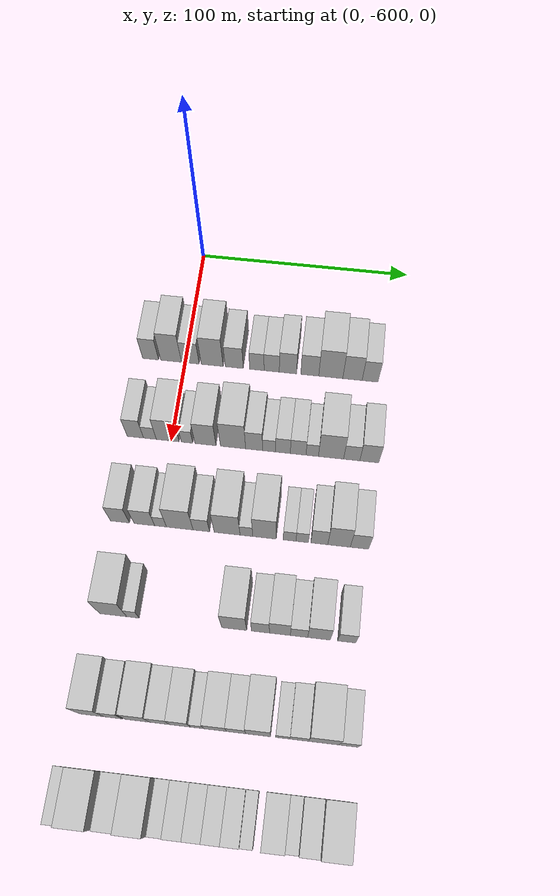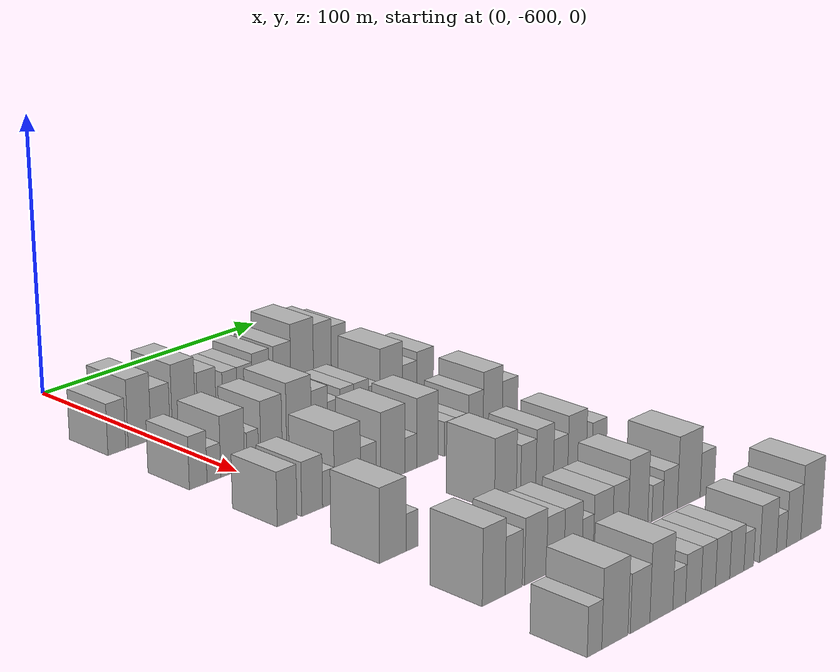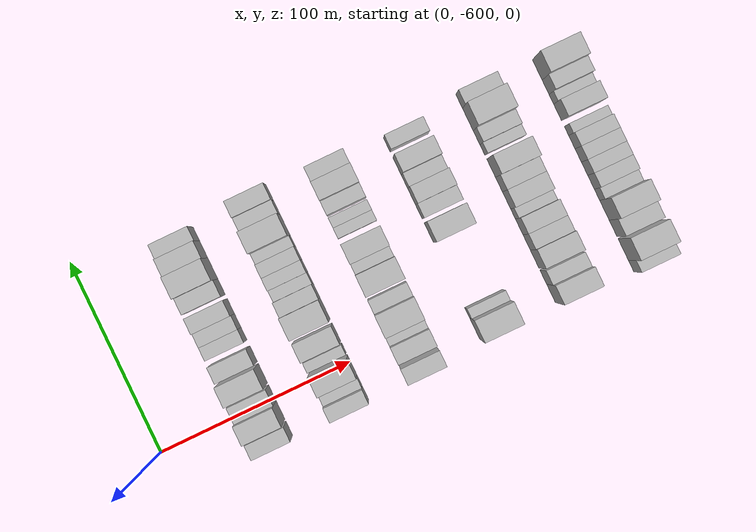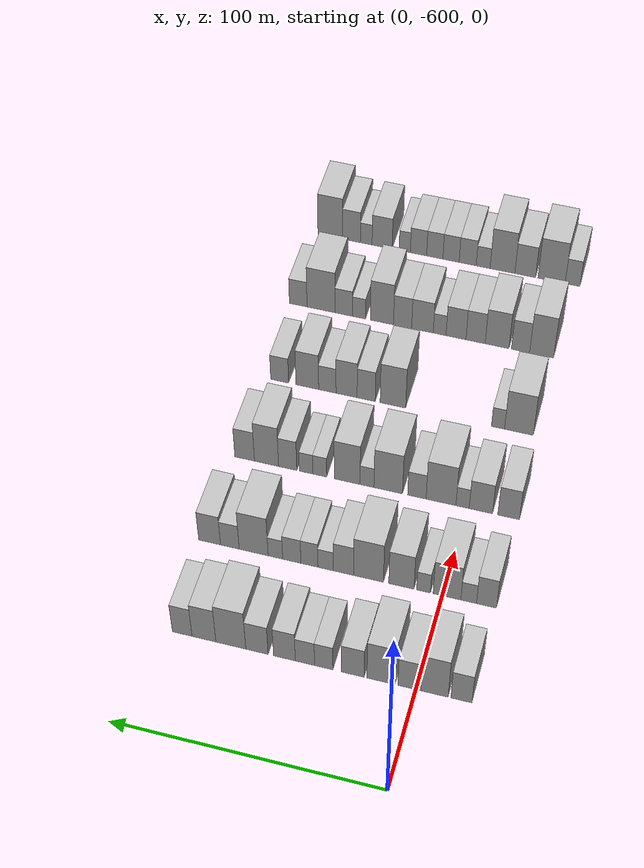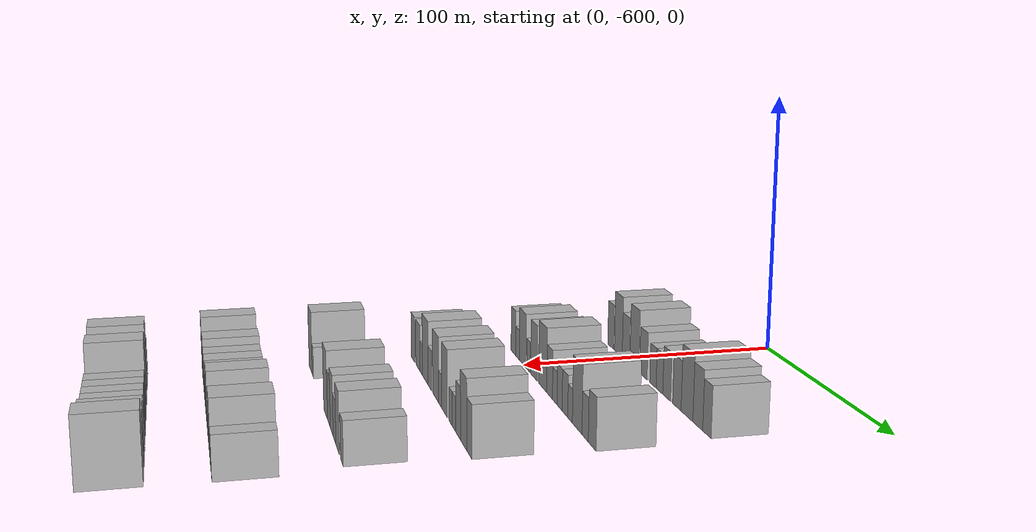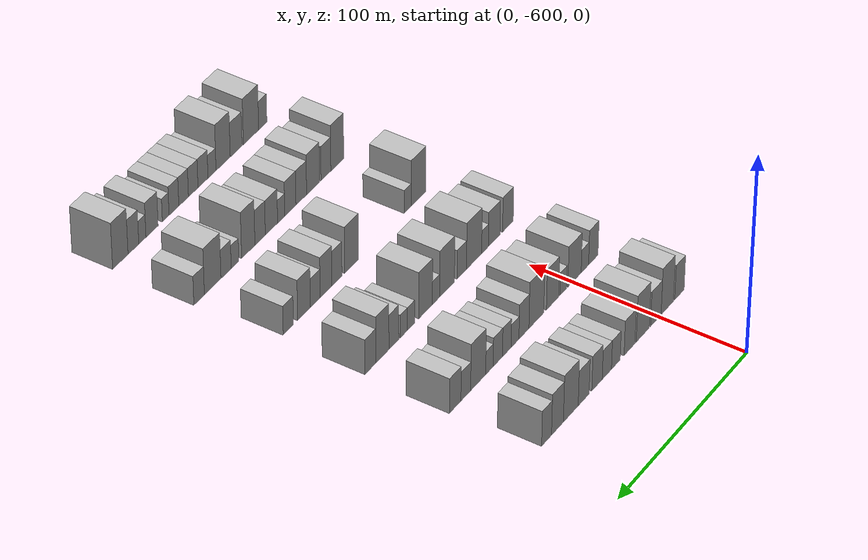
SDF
<sdf version="1.6">
 <world name="default">
  <model name="building_1">
   <static>1</static>
   <pose>50.0000 -616.2294 0 0.000000 0.000000 0.000000</pose>
   <link name="link">
    <pose>0 0 9.00 0 0 0</pose>
    <collision name="collision"><geometry><box><size>20.0000 7.5412 18.0000</size></box></geometry></collision>
    <visual name="visual">
     <cast_shadows>0</cast_shadows>
     <geometry><box><size>20.0000 7.5412 18.0000</size></box></geometry>
     <material>
      <script>
       <uri>model://HANNAS_wall/materials/scripts</uri>
       <uri>model://HANNAS_wall/materials/textures</uri>
       <name>vrc/HANNAS_wall</name>
      </script>
     </material>
    </visual>
   </link>
  </model>
  <model name="building_2">
   <static>1</static>
   <pose>50.0000 -606.5758 0 0.000000 0.000000 0.000000</pose>
   <link name="link">
    <pose>0 0 12.00 0 0 0</pose>
    <collision name="collision"><geometry><box><size>20.0000 9.7662 24.0000</size></box></geometry></collision>
    <visual name="visual">
     <cast_shadows>0</cast_shadows>
     <geometry><box><size>20.0000 9.7662 24.0000</size></box></geometry>
     <material>
      <script>
       <uri>model://HANNAS_wall/materials/scripts</uri>
       <uri>model://HANNAS_wall/materials/textures</uri>
       <name>vrc/HANNAS_wall</name>
      </script>
     </material>
    </visual>
   </link>
  </model>
  <model name="building_3">
   <static>1</static>
   <pose>50.0000 -597.5221 0 0.000000 0.000000 0.000000</pose>
   <link name="link">
    <pose>0 0 9.00 0 0 0</pose>
    <collision name="collision"><geometry><box><size>20.0000 8.3411 18.0000</size></box></geometry></collision>
    <visual name="visual">
     <cast_shadows>0</cast_shadows>
     <geometry><box><size>20.0000 8.3411 18.0000</size></box></geometry>
     <material>
      <script>
       <uri>model://HANNAS_wall/materials/scripts</uri>
       <uri>model://HANNAS_wall/materials/textures</uri>
       <name>vrc/HANNAS_wall</name>
      </script>
     </material>
    </visual>
   </link>
  </model>
  <model name="building_4">
   <static>1</static>
   <pose>50.0000 -587.2268 0 0.000000 0.000000 0.000000</pose>
   <link name="link">
    <pose>0 0 12.00 0 0 0</pose>
    <collision name="collision"><geometry><box><size>20.0000 10.2496 24.0000</size></box></geometry></collision>
    <visual name="visual">
     <cast_shadows>0</cast_shadows>
     <geometry><box><size>20.0000 10.2496 24.0000</size></box></geometry>
     <material>
      <script>
       <uri>model://HANNAS_wall/materials/scripts</uri>
       <uri>model://HANNAS_wall/materials/textures</uri>
       <name>vrc/HANNAS_wall</name>
      </script>
     </material>
    </visual>
   </link>
  </model>
  <model name="building_5">
   <static>1</static>
   <pose>50.0000 -576.8918 0 0.000000 0.000000 0.000000</pose>
   <link name="link">
    <pose>0 0 9.00 0 0 0</pose>
    <collision name="collision"><geometry><box><size>20.0000 8.4203 18.0000</size></box></geometry></collision>
    <visual name="visual">
     <cast_shadows>0</cast_shadows>
     <geometry><box><size>20.0000 8.4203 18.0000</size></box></geometry>
     <material>
      <script>
       <uri>model://HANNAS_wall/materials/scripts</uri>
       <uri>model://HANNAS_wall/materials/textures</uri>
       <name>vrc/HANNAS_wall</name>
      </script>
     </material>
    </visual>
   </link>
  </model>
  <model name="building_6">
   <static>1</static>
   <pose>50.0000 -566.3089 0 0.000000 0.000000 0.000000</pose>
   <link name="link">
    <pose>0 0 7.50 0 0 0</pose>
    <collision name="collision"><geometry><box><size>20.0000 6.7456 15.0000</size></box></geometry></collision>
    <visual name="visual">
     <cast_shadows>0</cast_shadows>
     <geometry><box><size>20.0000 6.7456 15.0000</size></box></geometry>
     <material>
      <script>
       <uri>model://HANNAS_wall/materials/scripts</uri>
       <uri>model://HANNAS_wall/materials/textures</uri>
       <name>vrc/HANNAS_wall</name>
      </script>
     </material>
    </visual>
   </link>
  </model>
  <model name="building_7">
   <static>1</static>
   <pose>50.0000 -559.3976 0 0.000000 0.000000 0.000000</pose>
   <link name="link">
    <pose>0 0 7.50 0 0 0</pose>
    <collision name="collision"><geometry><box><size>20.0000 7.0770 15.0000</size></box></geometry></collision>
    <visual name="visual">
     <cast_shadows>0</cast_shadows>
     <geometry><box><size>20.0000 7.0770 15.0000</size></box></geometry>
     <material>
      <script>
       <uri>model://HANNAS_wall/materials/scripts</uri>
       <uri>model://HANNAS_wall/materials/textures</uri>
       <name>vrc/HANNAS_wall</name>
      </script>
     </material>
    </visual>
   </link>
  </model>
  <model name="building_8">
   <static>1</static>
   <pose>50.0000 -551.8449 0 0.000000 0.000000 0.000000</pose>
   <link name="link">
    <pose>0 0 9.00 0 0 0</pose>
    <collision name="collision"><geometry><box><size>20.0000 8.0285 18.0000</size></box></geometry></collision>
    <visual name="visual">
     <cast_shadows>0</cast_shadows>
     <geometry><box><size>20.0000 8.0285 18.0000</size></box></geometry>
     <material>
      <script>
       <uri>model://HANNAS_wall/materials/scripts</uri>
       <uri>model://HANNAS_wall/materials/textures</uri>
       <name>vrc/HANNAS_wall</name>
      </script>
     </material>
    </visual>
   </link>
  </model>
  <model name="building_9">
   <static>1</static>
   <pose>50.0000 -541.6741 0 0.000000 0.000000 0.000000</pose>
   <link name="link">
    <pose>0 0 9.00 0 0 0</pose>
    <collision name="collision"><geometry><box><size>20.0000 8.3131 18.0000</size></box></geometry></collision>
    <visual name="visual">
     <cast_shadows>0</cast_shadows>
     <geometry><box><size>20.0000 8.3131 18.0000</size></box></geometry>
     <material>
      <script>
       <uri>model://HANNAS_wall/materials/scripts</uri>
       <uri>model://HANNAS_wall/materials/textures</uri>
       <name>vrc/HANNAS_wall</name>
      </script>
     </material>
    </visual>
   </link>
  </model>
  <model name="building_10">
   <static>1</static>
   <pose>50.0000 -531.9448 0 0.000000 0.000000 0.000000</pose>
   <link name="link">
    <pose>0 0 12.00 0 0 0</pose>
    <collision name="collision"><geometry><box><size>20.0000 11.1454 24.0000</size></box></geometry></collision>
    <visual name="visual">
     <cast_shadows>0</cast_shadows>
     <geometry><box><size>20.0000 11.1454 24.0000</size></box></geometry>
     <material>
      <script>
       <uri>model://HANNAS_wall/materials/scripts</uri>
       <uri>model://HANNAS_wall/materials/textures</uri>
       <name>vrc/HANNAS_wall</name>
      </script>
     </material>
    </visual>
   </link>
  </model>
  <model name="building_11">
   <static>1</static>
   <pose>50.0000 -521.9122 0 0.000000 0.000000 0.000000</pose>
   <link name="link">
    <pose>0 0 10.50 0 0 0</pose>
    <collision name="collision"><geometry><box><size>20.0000 8.9199 21.0000</size></box></geometry></collision>
    <visual name="visual">
     <cast_shadows>0</cast_shadows>
     <geometry><box><size>20.0000 8.9199 21.0000</size></box></geometry>
     <material>
      <script>
       <uri>model://HANNAS_wall/materials/scripts</uri>
       <uri>model://HANNAS_wall/materials/textures</uri>
       <name>vrc/HANNAS_wall</name>
      </script>
     </material>
    </visual>
   </link>
  </model>
  <model name="building_12">
   <static>1</static>
   <pose>50.0000 -513.7622 0 0.000000 0.000000 0.000000</pose>
   <link name="link">
    <pose>0 0 9.00 0 0 0</pose>
    <collision name="collision"><geometry><box><size>20.0000 7.3800 18.0000</size></box></geometry></collision>
    <visual name="visual">
     <cast_shadows>0</cast_shadows>
     <geometry><box><size>20.0000 7.3800 18.0000</size></box></geometry>
     <material>
      <script>
       <uri>model://HANNAS_wall/materials/scripts</uri>
       <uri>model://HANNAS_wall/materials/textures</uri>
       <name>vrc/HANNAS_wall</name>
      </script>
     </material>
    </visual>
   </link>
  </model>
  <model name="building_132">
   <static>1</static>
   <pose>90.0000 -616.2915 0 0.000000 0.000000 0.000000</pose>
   <link name="link">
    <pose>0 0 9.00 0 0 0</pose>
    <collision name="collision"><geometry><box><size>20.0000 7.4170 18.0000</size></box></geometry></collision>
    <visual name="visual">
     <cast_shadows>0</cast_shadows>
     <geometry><box><size>20.0000 7.4170 18.0000</size></box></geometry>
     <material>
      <script>
       <uri>model://HANNAS_wall/materials/scripts</uri>
       <uri>model://HANNAS_wall/materials/textures</uri>
       <name>vrc/HANNAS_wall</name>
      </script>
     </material>
    </visual>
   </link>
  </model>
  <model name="building_133">
   <static>1</static>
   <pose>90.0000 -609.6742 0 0.000000 0.000000 0.000000</pose>
   <link name="link">
    <pose>0 0 6.00 0 0 0</pose>
    <collision name="collision"><geometry><box><size>20.0000 5.8177 12.0000</size></box></geometry></collision>
    <visual name="visual">
     <cast_shadows>0</cast_shadows>
     <geometry><box><size>20.0000 5.8177 12.0000</size></box></geometry>
     <material>
      <script>
       <uri>model://HANNAS_wall/materials/scripts</uri>
       <uri>model://HANNAS_wall/materials/textures</uri>
       <name>vrc/HANNAS_wall</name>
      </script>
     </material>
    </visual>
   </link>
  </model>
  <model name="building_134">
   <static>1</static>
   <pose>90.0000 -601.6048 0 0.000000 0.000000 0.000000</pose>
   <link name="link">
    <pose>0 0 10.50 0 0 0</pose>
    <collision name="collision"><geometry><box><size>20.0000 10.3211 21.0000</size></box></geometry></collision>
    <visual name="visual">
     <cast_shadows>0</cast_shadows>
     <geometry><box><size>20.0000 10.3211 21.0000</size></box></geometry>
     <material>
      <script>
       <uri>model://HANNAS_wall/materials/scripts</uri>
       <uri>model://HANNAS_wall/materials/textures</uri>
       <name>vrc/HANNAS_wall</name>
      </script>
     </material>
    </visual>
   </link>
  </model>
  <model name="building_135">
   <static>1</static>
   <pose>90.0000 -592.8657 0 0.000000 0.000000 0.000000</pose>
   <link name="link">
    <pose>0 0 6.00 0 0 0</pose>
    <collision name="collision"><geometry><box><size>20.0000 5.1571 12.0000</size></box></geometry></collision>
    <visual name="visual">
     <cast_shadows>0</cast_shadows>
     <geometry><box><size>20.0000 5.1571 12.0000</size></box></geometry>
     <material>
      <script>
       <uri>model://HANNAS_wall/materials/scripts</uri>
       <uri>model://HANNAS_wall/materials/textures</uri>
       <name>vrc/HANNAS_wall</name>
      </script>
     </material>
    </visual>
   </link>
  </model>
  <model name="building_136">
   <static>1</static>
   <pose>90.0000 -584.5402 0 0.000000 0.000000 0.000000</pose>
   <link name="link">
    <pose>0 0 10.50 0 0 0</pose>
    <collision name="collision"><geometry><box><size>20.0000 9.4940 21.0000</size></box></geometry></collision>
    <visual name="visual">
     <cast_shadows>0</cast_shadows>
     <geometry><box><size>20.0000 9.4940 21.0000</size></box></geometry>
     <material>
      <script>
       <uri>model://HANNAS_wall/materials/scripts</uri>
       <uri>model://HANNAS_wall/materials/textures</uri>
       <name>vrc/HANNAS_wall</name>
      </script>
     </material>
    </visual>
   </link>
  </model>
  <model name="building_137">
   <static>1</static>
   <pose>90.0000 -572.1343 0 0.000000 0.000000 0.000000</pose>
   <link name="link">
    <pose>0 0 12.00 0 0 0</pose>
    <collision name="collision"><geometry><box><size>20.0000 11.3178 24.0000</size></box></geometry></collision>
    <visual name="visual">
     <cast_shadows>0</cast_shadows>
     <geometry><box><size>20.0000 11.3178 24.0000</size></box></geometry>
     <material>
      <script>
       <uri>model://HANNAS_wall/materials/scripts</uri>
       <uri>model://HANNAS_wall/materials/textures</uri>
       <name>vrc/HANNAS_wall</name>
      </script>
     </material>
    </visual>
   </link>
  </model>
  <model name="building_138">
   <static>1</static>
   <pose>90.0000 -562.6728 0 0.000000 0.000000 0.000000</pose>
   <link name="link">
    <pose>0 0 9.00 0 0 0</pose>
    <collision name="collision"><geometry><box><size>20.0000 7.6053 18.0000</size></box></geometry></collision>
    <visual name="visual">
     <cast_shadows>0</cast_shadows>
     <geometry><box><size>20.0000 7.6053 18.0000</size></box></geometry>
     <material>
      <script>
       <uri>model://HANNAS_wall/materials/scripts</uri>
       <uri>model://HANNAS_wall/materials/textures</uri>
       <name>vrc/HANNAS_wall</name>
      </script>
     </material>
    </visual>
   </link>
  </model>
  <model name="building_139">
   <static>1</static>
   <pose>90.0000 -555.9169 0 0.000000 0.000000 0.000000</pose>
   <link name="link">
    <pose>0 0 6.00 0 0 0</pose>
    <collision name="collision"><geometry><box><size>20.0000 5.9066 12.0000</size></box></geometry></collision>
    <visual name="visual">
     <cast_shadows>0</cast_shadows>
     <geometry><box><size>20.0000 5.9066 12.0000</size></box></geometry>
     <material>
      <script>
       <uri>model://HANNAS_wall/materials/scripts</uri>
       <uri>model://HANNAS_wall/materials/textures</uri>
       <name>vrc/HANNAS_wall</name>
      </script>
     </material>
    </visual>
   </link>
  </model>
  <model name="building_140">
   <static>1</static>
   <pose>90.0000 -549.7040 0 0.000000 0.000000 0.000000</pose>
   <link name="link">
    <pose>0 0 7.50 0 0 0</pose>
    <collision name="collision"><geometry><box><size>20.0000 6.5191 15.0000</size></box></geometry></collision>
    <visual name="visual">
     <cast_shadows>0</cast_shadows>
     <geometry><box><size>20.0000 6.5191 15.0000</size></box></geometry>
     <material>
      <script>
       <uri>model://HANNAS_wall/materials/scripts</uri>
       <uri>model://HANNAS_wall/materials/textures</uri>
       <name>vrc/HANNAS_wall</name>
      </script>
     </material>
    </visual>
   </link>
  </model>
  <model name="building_141">
   <static>1</static>
   <pose>90.0000 -542.9523 0 0.000000 0.000000 0.000000</pose>
   <link name="link">
    <pose>0 0 7.50 0 0 0</pose>
    <collision name="collision"><geometry><box><size>20.0000 6.9843 15.0000</size></box></geometry></collision>
    <visual name="visual">
     <cast_shadows>0</cast_shadows>
     <geometry><box><size>20.0000 6.9843 15.0000</size></box></geometry>
     <material>
      <script>
       <uri>model://HANNAS_wall/materials/scripts</uri>
       <uri>model://HANNAS_wall/materials/textures</uri>
       <name>vrc/HANNAS_wall</name>
      </script>
     </material>
    </visual>
   </link>
  </model>
  <model name="building_142">
   <static>1</static>
   <pose>90.0000 -536.6848 0 0.000000 0.000000 0.000000</pose>
   <link name="link">
    <pose>0 0 6.00 0 0 0</pose>
    <collision name="collision"><geometry><box><size>20.0000 5.5508 12.0000</size></box></geometry></collision>
    <visual name="visual">
     <cast_shadows>0</cast_shadows>
     <geometry><box><size>20.0000 5.5508 12.0000</size></box></geometry>
     <material>
      <script>
       <uri>model://HANNAS_wall/materials/scripts</uri>
       <uri>model://HANNAS_wall/materials/textures</uri>
       <name>vrc/HANNAS_wall</name>
      </script>
     </material>
    </visual>
   </link>
  </model>
  <model name="building_143">
   <static>1</static>
   <pose>90.0000 -528.3121 0 0.000000 0.000000 0.000000</pose>
   <link name="link">
    <pose>0 0 12.00 0 0 0</pose>
    <collision name="collision"><geometry><box><size>20.0000 11.1945 24.0000</size></box></geometry></collision>
    <visual name="visual">
     <cast_shadows>0</cast_shadows>
     <geometry><box><size>20.0000 11.1945 24.0000</size></box></geometry>
     <material>
      <script>
       <uri>model://HANNAS_wall/materials/scripts</uri>
       <uri>model://HANNAS_wall/materials/textures</uri>
       <name>vrc/HANNAS_wall</name>
      </script>
     </material>
    </visual>
   </link>
  </model>
  <model name="building_144">
   <static>1</static>
   <pose>90.0000 -519.1169 0 0.000000 0.000000 0.000000</pose>
   <link name="link">
    <pose>0 0 7.50 0 0 0</pose>
    <collision name="collision"><geometry><box><size>20.0000 7.1959 15.0000</size></box></geometry></collision>
    <visual name="visual">
     <cast_shadows>0</cast_shadows>
     <geometry><box><size>20.0000 7.1959 15.0000</size></box></geometry>
     <material>
      <script>
       <uri>model://HANNAS_wall/materials/scripts</uri>
       <uri>model://HANNAS_wall/materials/textures</uri>
       <name>vrc/HANNAS_wall</name>
      </script>
     </material>
    </visual>
   </link>
  </model>
  <model name="building_145">
   <static>1</static>
   <pose>90.0000 -511.2906 0 0.000000 0.000000 0.000000</pose>
   <link name="link">
    <pose>0 0 9.00 0 0 0</pose>
    <collision name="collision"><geometry><box><size>20.0000 8.4568 18.0000</size></box></geometry></collision>
    <visual name="visual">
     <cast_shadows>0</cast_shadows>
     <geometry><box><size>20.0000 8.4568 18.0000</size></box></geometry>
     <material>
      <script>
       <uri>model://HANNAS_wall/materials/scripts</uri>
       <uri>model://HANNAS_wall/materials/textures</uri>
       <name>vrc/HANNAS_wall</name>
      </script>
     </material>
    </visual>
   </link>
  </model>
  <model name="building_267">
   <static>1</static>
   <pose>130.0000 -615.8554 0 0.000000 0.000000 0.000000</pose>
   <link name="link">
    <pose>0 0 9.00 0 0 0</pose>
    <collision name="collision"><geometry><box><size>20.0000 8.2891 18.0000</size></box></geometry></collision>
    <visual name="visual">
     <cast_shadows>0</cast_shadows>
     <geometry><box><size>20.0000 8.2891 18.0000</size></box></geometry>
     <material>
      <script>
       <uri>model://HANNAS_wall/materials/scripts</uri>
       <uri>model://HANNAS_wall/materials/textures</uri>
       <name>vrc/HANNAS_wall</name>
      </script>
     </material>
    </visual>
   </link>
  </model>
  <model name="building_268">
   <static>1</static>
   <pose>130.0000 -605.2284 0 0.000000 0.000000 0.000000</pose>
   <link name="link">
    <pose>0 0 9.00 0 0 0</pose>
    <collision name="collision"><geometry><box><size>20.0000 8.9651 18.0000</size></box></geometry></collision>
    <visual name="visual">
     <cast_shadows>0</cast_shadows>
     <geometry><box><size>20.0000 8.9651 18.0000</size></box></geometry>
     <material>
      <script>
       <uri>model://HANNAS_wall/materials/scripts</uri>
       <uri>model://HANNAS_wall/materials/textures</uri>
       <name>vrc/HANNAS_wall</name>
      </script>
     </material>
    </visual>
   </link>
  </model>
  <model name="building_269">
   <static>1</static>
   <pose>130.0000 -598.1851 0 0.000000 0.000000 0.000000</pose>
   <link name="link">
    <pose>0 0 6.00 0 0 0</pose>
    <collision name="collision"><geometry><box><size>20.0000 5.1214 12.0000</size></box></geometry></collision>
    <visual name="visual">
     <cast_shadows>0</cast_shadows>
     <geometry><box><size>20.0000 5.1214 12.0000</size></box></geometry>
     <material>
      <script>
       <uri>model://HANNAS_wall/materials/scripts</uri>
       <uri>model://HANNAS_wall/materials/textures</uri>
       <name>vrc/HANNAS_wall</name>
      </script>
     </material>
    </visual>
   </link>
  </model>
  <model name="building_270">
   <static>1</static>
   <pose>130.0000 -589.8404 0 0.000000 0.000000 0.000000</pose>
   <link name="link">
    <pose>0 0 12.00 0 0 0</pose>
    <collision name="collision"><geometry><box><size>20.0000 11.5681 24.0000</size></box></geometry></collision>
    <visual name="visual">
     <cast_shadows>0</cast_shadows>
     <geometry><box><size>20.0000 11.5681 24.0000</size></box></geometry>
     <material>
      <script>
       <uri>model://HANNAS_wall/materials/scripts</uri>
       <uri>model://HANNAS_wall/materials/textures</uri>
       <name>vrc/HANNAS_wall</name>
      </script>
     </material>
    </visual>
   </link>
  </model>
  <model name="building_271">
   <static>1</static>
   <pose>130.0000 -580.4876 0 0.000000 0.000000 0.000000</pose>
   <link name="link">
    <pose>0 0 7.50 0 0 0</pose>
    <collision name="collision"><geometry><box><size>20.0000 7.1375 15.0000</size></box></geometry></collision>
    <visual name="visual">
     <cast_shadows>0</cast_shadows>
     <geometry><box><size>20.0000 7.1375 15.0000</size></box></geometry>
     <material>
      <script>
       <uri>model://HANNAS_wall/materials/scripts</uri>
       <uri>model://HANNAS_wall/materials/textures</uri>
       <name>vrc/HANNAS_wall</name>
      </script>
     </material>
    </visual>
   </link>
  </model>
  <model name="building_272">
   <static>1</static>
   <pose>130.0000 -569.3463 0 0.000000 0.000000 0.000000</pose>
   <link name="link">
    <pose>0 0 12.00 0 0 0</pose>
    <collision name="collision"><geometry><box><size>20.0000 11.1453 24.0000</size></box></geometry></collision>
    <visual name="visual">
     <cast_shadows>0</cast_shadows>
     <geometry><box><size>20.0000 11.1453 24.0000</size></box></geometry>
     <material>
      <script>
       <uri>model://HANNAS_wall/materials/scripts</uri>
       <uri>model://HANNAS_wall/materials/textures</uri>
       <name>vrc/HANNAS_wall</name>
      </script>
     </material>
    </visual>
   </link>
  </model>
  <model name="building_273">
   <static>1</static>
   <pose>130.0000 -561.0457 0 0.000000 0.000000 0.000000</pose>
   <link name="link">
    <pose>0 0 6.00 0 0 0</pose>
    <collision name="collision"><geometry><box><size>20.0000 5.4559 12.0000</size></box></geometry></collision>
    <visual name="visual">
     <cast_shadows>0</cast_shadows>
     <geometry><box><size>20.0000 5.4559 12.0000</size></box></geometry>
     <material>
      <script>
       <uri>model://HANNAS_wall/materials/scripts</uri>
       <uri>model://HANNAS_wall/materials/textures</uri>
       <name>vrc/HANNAS_wall</name>
      </script>
     </material>
    </visual>
   </link>
  </model>
  <model name="building_274">
   <static>1</static>
   <pose>130.0000 -553.2570 0 0.000000 0.000000 0.000000</pose>
   <link name="link">
    <pose>0 0 12.00 0 0 0</pose>
    <collision name="collision"><geometry><box><size>20.0000 10.1215 24.0000</size></box></geometry></collision>
    <visual name="visual">
     <cast_shadows>0</cast_shadows>
     <geometry><box><size>20.0000 10.1215 24.0000</size></box></geometry>
     <material>
      <script>
       <uri>model://HANNAS_wall/materials/scripts</uri>
       <uri>model://HANNAS_wall/materials/textures</uri>
       <name>vrc/HANNAS_wall</name>
      </script>
     </material>
    </visual>
   </link>
  </model>
  <model name="building_275">
   <static>1</static>
   <pose>130.0000 -542.4611 0 0.000000 0.000000 0.000000</pose>
   <link name="link">
    <pose>0 0 6.00 0 0 0</pose>
    <collision name="collision"><geometry><box><size>20.0000 5.4704 12.0000</size></box></geometry></collision>
    <visual name="visual">
     <cast_shadows>0</cast_shadows>
     <geometry><box><size>20.0000 5.4704 12.0000</size></box></geometry>
     <material>
      <script>
       <uri>model://HANNAS_wall/materials/scripts</uri>
       <uri>model://HANNAS_wall/materials/textures</uri>
       <name>vrc/HANNAS_wall</name>
      </script>
     </material>
    </visual>
   </link>
  </model>
  <model name="building_276">
   <static>1</static>
   <pose>130.0000 -537.0556 0 0.000000 0.000000 0.000000</pose>
   <link name="link">
    <pose>0 0 6.00 0 0 0</pose>
    <collision name="collision"><geometry><box><size>20.0000 5.3407 12.0000</size></box></geometry></collision>
    <visual name="visual">
     <cast_shadows>0</cast_shadows>
     <geometry><box><size>20.0000 5.3407 12.0000</size></box></geometry>
     <material>
      <script>
       <uri>model://HANNAS_wall/materials/scripts</uri>
       <uri>model://HANNAS_wall/materials/textures</uri>
       <name>vrc/HANNAS_wall</name>
      </script>
     </material>
    </visual>
   </link>
  </model>
  <model name="building_277">
   <static>1</static>
   <pose>130.0000 -529.7718 0 0.000000 0.000000 0.000000</pose>
   <link name="link">
    <pose>0 0 9.00 0 0 0</pose>
    <collision name="collision"><geometry><box><size>20.0000 7.2268 18.0000</size></box></geometry></collision>
    <visual name="visual">
     <cast_shadows>0</cast_shadows>
     <geometry><box><size>20.0000 7.2268 18.0000</size></box></geometry>
     <material>
      <script>
       <uri>model://HANNAS_wall/materials/scripts</uri>
       <uri>model://HANNAS_wall/materials/textures</uri>
       <name>vrc/HANNAS_wall</name>
      </script>
     </material>
    </visual>
   </link>
  </model>
  <model name="building_278">
   <static>1</static>
   <pose>130.0000 -521.3515 0 0.000000 0.000000 0.000000</pose>
   <link name="link">
    <pose>0 0 12.00 0 0 0</pose>
    <collision name="collision"><geometry><box><size>20.0000 9.6138 24.0000</size></box></geometry></collision>
    <visual name="visual">
     <cast_shadows>0</cast_shadows>
     <geometry><box><size>20.0000 9.6138 24.0000</size></box></geometry>
     <material>
      <script>
       <uri>model://HANNAS_wall/materials/scripts</uri>
       <uri>model://HANNAS_wall/materials/textures</uri>
       <name>vrc/HANNAS_wall</name>
      </script>
     </material>
    </visual>
   </link>
  </model>
  <model name="building_279">
   <static>1</static>
   <pose>130.0000 -512.6227 0 0.000000 0.000000 0.000000</pose>
   <link name="link">
    <pose>0 0 9.00 0 0 0</pose>
    <collision name="collision"><geometry><box><size>20.0000 7.8438 18.0000</size></box></geometry></collision>
    <visual name="visual">
     <cast_shadows>0</cast_shadows>
     <geometry><box><size>20.0000 7.8438 18.0000</size></box></geometry>
     <material>
      <script>
       <uri>model://HANNAS_wall/materials/scripts</uri>
       <uri>model://HANNAS_wall/materials/textures</uri>
       <name>vrc/HANNAS_wall</name>
      </script>
     </material>
    </visual>
   </link>
  </model>
  <model name="building_397">
   <static>1</static>
   <pose>170.0000 -611.3133 0 0.000000 0.000000 0.000000</pose>
   <link name="link">
    <pose>0 0 12.00 0 0 0</pose>
    <collision name="collision"><geometry><box><size>20.0000 11.3733 24.0000</size></box></geometry></collision>
    <visual name="visual">
     <cast_shadows>0</cast_shadows>
     <geometry><box><size>20.0000 11.3733 24.0000</size></box></geometry>
     <material>
      <script>
       <uri>model://HANNAS_wall/materials/scripts</uri>
       <uri>model://HANNAS_wall/materials/textures</uri>
       <name>vrc/HANNAS_wall</name>
      </script>
     </material>
    </visual>
   </link>
  </model>
  <model name="building_398">
   <static>1</static>
   <pose>170.0000 -603.0338 0 0.000000 0.000000 0.000000</pose>
   <link name="link">
    <pose>0 0 6.00 0 0 0</pose>
    <collision name="collision"><geometry><box><size>20.0000 5.1858 12.0000</size></box></geometry></collision>
    <visual name="visual">
     <cast_shadows>0</cast_shadows>
     <geometry><box><size>20.0000 5.1858 12.0000</size></box></geometry>
     <material>
      <script>
       <uri>model://HANNAS_wall/materials/scripts</uri>
       <uri>model://HANNAS_wall/materials/textures</uri>
       <name>vrc/HANNAS_wall</name>
      </script>
     </material>
    </visual>
   </link>
  </model>
  <model name="building_399">
   <static>1</static>
   <pose>170.0000 -560.9851 0 0.000000 0.000000 0.000000</pose>
   <link name="link">
    <pose>0 0 12.00 0 0 0</pose>
    <collision name="collision"><geometry><box><size>20.0000 10.3039 24.0000</size></box></geometry></collision>
    <visual name="visual">
     <cast_shadows>0</cast_shadows>
     <geometry><box><size>20.0000 10.3039 24.0000</size></box></geometry>
     <material>
      <script>
       <uri>model://HANNAS_wall/materials/scripts</uri>
       <uri>model://HANNAS_wall/materials/textures</uri>
       <name>vrc/HANNAS_wall</name>
      </script>
     </material>
    </visual>
   </link>
  </model>
  <model name="building_400">
   <static>1</static>
   <pose>170.0000 -550.1557 0 0.000000 0.000000 0.000000</pose>
   <link name="link">
    <pose>0 0 9.00 0 0 0</pose>
    <collision name="collision"><geometry><box><size>20.0000 7.3548 18.0000</size></box></geometry></collision>
    <visual name="visual">
     <cast_shadows>0</cast_shadows>
     <geometry><box><size>20.0000 7.3548 18.0000</size></box></geometry>
     <material>
      <script>
       <uri>model://HANNAS_wall/materials/scripts</uri>
       <uri>model://HANNAS_wall/materials/textures</uri>
       <name>vrc/HANNAS_wall</name>
      </script>
     </material>
    </visual>
   </link>
  </model>
  <model name="building_401">
   <static>1</static>
   <pose>170.0000 -542.1897 0 0.000000 0.000000 0.000000</pose>
   <link name="link">
    <pose>0 0 10.50 0 0 0</pose>
    <collision name="collision"><geometry><box><size>20.0000 8.5772 21.0000</size></box></geometry></collision>
    <visual name="visual">
     <cast_shadows>0</cast_shadows>
     <geometry><box><size>20.0000 8.5772 21.0000</size></box></geometry>
     <material>
      <script>
       <uri>model://HANNAS_wall/materials/scripts</uri>
       <uri>model://HANNAS_wall/materials/textures</uri>
       <name>vrc/HANNAS_wall</name>
      </script>
     </material>
    </visual>
   </link>
  </model>
  <model name="building_402">
   <static>1</static>
   <pose>170.0000 -534.3512 0 0.000000 0.000000 0.000000</pose>
   <link name="link">
    <pose>0 0 7.50 0 0 0</pose>
    <collision name="collision"><geometry><box><size>20.0000 7.0997 15.0000</size></box></geometry></collision>
    <visual name="visual">
     <cast_shadows>0</cast_shadows>
     <geometry><box><size>20.0000 7.0997 15.0000</size></box></geometry>
     <material>
      <script>
       <uri>model://HANNAS_wall/materials/scripts</uri>
       <uri>model://HANNAS_wall/materials/textures</uri>
       <name>vrc/HANNAS_wall</name>
      </script>
     </material>
    </visual>
   </link>
  </model>
  <model name="building_403">
   <static>1</static>
   <pose>170.0000 -526.1590 0 0.000000 0.000000 0.000000</pose>
   <link name="link">
    <pose>0 0 10.50 0 0 0</pose>
    <collision name="collision"><geometry><box><size>20.0000 9.2848 21.0000</size></box></geometry></collision>
    <visual name="visual">
     <cast_shadows>0</cast_shadows>
     <geometry><box><size>20.0000 9.2848 21.0000</size></box></geometry>
     <material>
      <script>
       <uri>model://HANNAS_wall/materials/scripts</uri>
       <uri>model://HANNAS_wall/materials/textures</uri>
       <name>vrc/HANNAS_wall</name>
      </script>
     </material>
    </visual>
   </link>
  </model>
  <model name="building_404">
   <static>1</static>
   <pose>170.0000 -514.8309 0 0.000000 0.000000 0.000000</pose>
   <link name="link">
    <pose>0 0 7.50 0 0 0</pose>
    <collision name="collision"><geometry><box><size>20.0000 7.3713 15.0000</size></box></geometry></collision>
    <visual name="visual">
     <cast_shadows>0</cast_shadows>
     <geometry><box><size>20.0000 7.3713 15.0000</size></box></geometry>
     <material>
      <script>
       <uri>model://HANNAS_wall/materials/scripts</uri>
       <uri>model://HANNAS_wall/materials/textures</uri>
       <name>vrc/HANNAS_wall</name>
      </script>
     </material>
    </visual>
   </link>
  </model>
  <model name="building_541">
   <static>1</static>
   <pose>210.0000 -612.1053 0 0.000000 0.000000 0.000000</pose>
   <link name="link">
    <pose>0 0 12.00 0 0 0</pose>
    <collision name="collision"><geometry><box><size>20.0000 9.7894 24.0000</size></box></geometry></collision>
    <visual name="visual">
     <cast_shadows>0</cast_shadows>
     <geometry><box><size>20.0000 9.7894 24.0000</size></box></geometry>
     <material>
      <script>
       <uri>model://HANNAS_wall/materials/scripts</uri>
       <uri>model://HANNAS_wall/materials/textures</uri>
       <name>vrc/HANNAS_wall</name>
      </script>
     </material>
    </visual>
   </link>
  </model>
  <model name="building_542">
   <static>1</static>
   <pose>210.0000 -603.5025 0 0.000000 0.000000 0.000000</pose>
   <link name="link">
    <pose>0 0 9.00 0 0 0</pose>
    <collision name="collision"><geometry><box><size>20.0000 7.4163 18.0000</size></box></geometry></collision>
    <visual name="visual">
     <cast_shadows>0</cast_shadows>
     <geometry><box><size>20.0000 7.4163 18.0000</size></box></geometry>
     <material>
      <script>
       <uri>model://HANNAS_wall/materials/scripts</uri>
       <uri>model://HANNAS_wall/materials/textures</uri>
       <name>vrc/HANNAS_wall</name>
      </script>
     </material>
    </visual>
   </link>
  </model>
  <model name="building_543">
   <static>1</static>
   <pose>210.0000 -593.9201 0 0.000000 0.000000 0.000000</pose>
   <link name="link">
    <pose>0 0 10.50 0 0 0</pose>
    <collision name="collision"><geometry><box><size>20.0000 9.7486 21.0000</size></box></geometry></collision>
    <visual name="visual">
     <cast_shadows>0</cast_shadows>
     <geometry><box><size>20.0000 9.7486 21.0000</size></box></geometry>
     <material>
      <script>
       <uri>model://HANNAS_wall/materials/scripts</uri>
       <uri>model://HANNAS_wall/materials/textures</uri>
       <name>vrc/HANNAS_wall</name>
      </script>
     </material>
    </visual>
   </link>
  </model>
  <model name="building_544">
   <static>1</static>
   <pose>210.0000 -585.0818 0 0.000000 0.000000 0.000000</pose>
   <link name="link">
    <pose>0 0 9.00 0 0 0</pose>
    <collision name="collision"><geometry><box><size>20.0000 7.9280 18.0000</size></box></geometry></collision>
    <visual name="visual">
     <cast_shadows>0</cast_shadows>
     <geometry><box><size>20.0000 7.9280 18.0000</size></box></geometry>
     <material>
      <script>
       <uri>model://HANNAS_wall/materials/scripts</uri>
       <uri>model://HANNAS_wall/materials/textures</uri>
       <name>vrc/HANNAS_wall</name>
      </script>
     </material>
    </visual>
   </link>
  </model>
  <model name="building_545">
   <static>1</static>
   <pose>210.0000 -576.9983 0 0.000000 0.000000 0.000000</pose>
   <link name="link">
    <pose>0 0 9.00 0 0 0</pose>
    <collision name="collision"><geometry><box><size>20.0000 8.2389 18.0000</size></box></geometry></collision>
    <visual name="visual">
     <cast_shadows>0</cast_shadows>
     <geometry><box><size>20.0000 8.2389 18.0000</size></box></geometry>
     <material>
      <script>
       <uri>model://HANNAS_wall/materials/scripts</uri>
       <uri>model://HANNAS_wall/materials/textures</uri>
       <name>vrc/HANNAS_wall</name>
      </script>
     </material>
    </visual>
   </link>
  </model>
  <model name="building_546">
   <static>1</static>
   <pose>210.0000 -570.2314 0 0.000000 0.000000 0.000000</pose>
   <link name="link">
    <pose>0 0 6.00 0 0 0</pose>
    <collision name="collision"><geometry><box><size>20.0000 5.2949 12.0000</size></box></geometry></collision>
    <visual name="visual">
     <cast_shadows>0</cast_shadows>
     <geometry><box><size>20.0000 5.2949 12.0000</size></box></geometry>
     <material>
      <script>
       <uri>model://HANNAS_wall/materials/scripts</uri>
       <uri>model://HANNAS_wall/materials/textures</uri>
       <name>vrc/HANNAS_wall</name>
      </script>
     </material>
    </visual>
   </link>
  </model>
  <model name="building_547">
   <static>1</static>
   <pose>210.0000 -563.0905 0 0.000000 0.000000 0.000000</pose>
   <link name="link">
    <pose>0 0 9.00 0 0 0</pose>
    <collision name="collision"><geometry><box><size>20.0000 8.9868 18.0000</size></box></geometry></collision>
    <visual name="visual">
     <cast_shadows>0</cast_shadows>
     <geometry><box><size>20.0000 8.9868 18.0000</size></box></geometry>
     <material>
      <script>
       <uri>model://HANNAS_wall/materials/scripts</uri>
       <uri>model://HANNAS_wall/materials/textures</uri>
       <name>vrc/HANNAS_wall</name>
      </script>
     </material>
    </visual>
   </link>
  </model>
  <model name="building_548">
   <static>1</static>
   <pose>210.0000 -554.8137 0 0.000000 0.000000 0.000000</pose>
   <link name="link">
    <pose>0 0 9.00 0 0 0</pose>
    <collision name="collision"><geometry><box><size>20.0000 7.5670 18.0000</size></box></geometry></collision>
    <visual name="visual">
     <cast_shadows>0</cast_shadows>
     <geometry><box><size>20.0000 7.5670 18.0000</size></box></geometry>
     <material>
      <script>
       <uri>model://HANNAS_wall/materials/scripts</uri>
       <uri>model://HANNAS_wall/materials/textures</uri>
       <name>vrc/HANNAS_wall</name>
      </script>
     </material>
    </visual>
   </link>
  </model>
  <model name="building_549">
   <static>1</static>
   <pose>210.0000 -546.1893 0 0.000000 0.000000 0.000000</pose>
   <link name="link">
    <pose>0 0 12.00 0 0 0</pose>
    <collision name="collision"><geometry><box><size>20.0000 9.6818 24.0000</size></box></geometry></collision>
    <visual name="visual">
     <cast_shadows>0</cast_shadows>
     <geometry><box><size>20.0000 9.6818 24.0000</size></box></geometry>
     <material>
      <script>
       <uri>model://HANNAS_wall/materials/scripts</uri>
       <uri>model://HANNAS_wall/materials/textures</uri>
       <name>vrc/HANNAS_wall</name>
      </script>
     </material>
    </visual>
   </link>
  </model>
  <model name="building_550">
   <static>1</static>
   <pose>210.0000 -536.5993 0 0.000000 0.000000 0.000000</pose>
   <link name="link">
    <pose>0 0 6.00 0 0 0</pose>
    <collision name="collision"><geometry><box><size>20.0000 5.4981 12.0000</size></box></geometry></collision>
    <visual name="visual">
     <cast_shadows>0</cast_shadows>
     <geometry><box><size>20.0000 5.4981 12.0000</size></box></geometry>
     <material>
      <script>
       <uri>model://HANNAS_wall/materials/scripts</uri>
       <uri>model://HANNAS_wall/materials/textures</uri>
       <name>vrc/HANNAS_wall</name>
      </script>
     </material>
    </visual>
   </link>
  </model>
  <model name="building_551">
   <static>1</static>
   <pose>210.0000 -530.1789 0 0.000000 0.000000 0.000000</pose>
   <link name="link">
    <pose>0 0 7.50 0 0 0</pose>
    <collision name="collision"><geometry><box><size>20.0000 7.3427 15.0000</size></box></geometry></collision>
    <visual name="visual">
     <cast_shadows>0</cast_shadows>
     <geometry><box><size>20.0000 7.3427 15.0000</size></box></geometry>
     <material>
      <script>
       <uri>model://HANNAS_wall/materials/scripts</uri>
       <uri>model://HANNAS_wall/materials/textures</uri>
       <name>vrc/HANNAS_wall</name>
      </script>
     </material>
    </visual>
   </link>
  </model>
  <model name="building_552">
   <static>1</static>
   <pose>210.0000 -520.5899 0 0.000000 0.000000 0.000000</pose>
   <link name="link">
    <pose>0 0 12.00 0 0 0</pose>
    <collision name="collision"><geometry><box><size>20.0000 11.8353 24.0000</size></box></geometry></collision>
    <visual name="visual">
     <cast_shadows>0</cast_shadows>
     <geometry><box><size>20.0000 11.8353 24.0000</size></box></geometry>
     <material>
      <script>
       <uri>model://HANNAS_wall/materials/scripts</uri>
       <uri>model://HANNAS_wall/materials/textures</uri>
       <name>vrc/HANNAS_wall</name>
      </script>
     </material>
    </visual>
   </link>
  </model>
  <model name="building_553">
   <static>1</static>
   <pose>210.0000 -510.9445 0 0.000000 0.000000 0.000000</pose>
   <link name="link">
    <pose>0 0 7.50 0 0 0</pose>
    <collision name="collision"><geometry><box><size>20.0000 7.4556 15.0000</size></box></geometry></collision>
    <visual name="visual">
     <cast_shadows>0</cast_shadows>
     <geometry><box><size>20.0000 7.4556 15.0000</size></box></geometry>
     <material>
      <script>
       <uri>model://HANNAS_wall/materials/scripts</uri>
       <uri>model://HANNAS_wall/materials/textures</uri>
       <name>vrc/HANNAS_wall</name>
      </script>
     </material>
    </visual>
   </link>
  </model>
  <model name="building_679">
   <static>1</static>
   <pose>250.0000 -616.8935 0 0.000000 0.000000 0.000000</pose>
   <link name="link">
    <pose>0 0 7.50 0 0 0</pose>
    <collision name="collision"><geometry><box><size>20.0000 6.2131 15.0000</size></box></geometry></collision>
    <visual name="visual">
     <cast_shadows>0</cast_shadows>
     <geometry><box><size>20.0000 6.2131 15.0000</size></box></geometry>
     <material>
      <script>
       <uri>model://HANNAS_wall/materials/scripts</uri>
       <uri>model://HANNAS_wall/materials/textures</uri>
       <name>vrc/HANNAS_wall</name>
      </script>
     </material>
    </visual>
   </link>
  </model>
  <model name="building_680">
   <static>1</static>
   <pose>250.0000 -608.0912 0 0.000000 0.000000 0.000000</pose>
   <link name="link">
    <pose>0 0 12.00 0 0 0</pose>
    <collision name="collision"><geometry><box><size>20.0000 11.3914 24.0000</size></box></geometry></collision>
    <visual name="visual">
     <cast_shadows>0</cast_shadows>
     <geometry><box><size>20.0000 11.3914 24.0000</size></box></geometry>
     <material>
      <script>
       <uri>model://HANNAS_wall/materials/scripts</uri>
       <uri>model://HANNAS_wall/materials/textures</uri>
       <name>vrc/HANNAS_wall</name>
      </script>
     </material>
    </visual>
   </link>
  </model>
  <model name="building_681">
   <static>1</static>
   <pose>250.0000 -597.0245 0 0.000000 0.000000 0.000000</pose>
   <link name="link">
    <pose>0 0 9.00 0 0 0</pose>
    <collision name="collision"><geometry><box><size>20.0000 8.7422 18.0000</size></box></geometry></collision>
    <visual name="visual">
     <cast_shadows>0</cast_shadows>
     <geometry><box><size>20.0000 8.7422 18.0000</size></box></geometry>
     <material>
      <script>
       <uri>model://HANNAS_wall/materials/scripts</uri>
       <uri>model://HANNAS_wall/materials/textures</uri>
       <name>vrc/HANNAS_wall</name>
      </script>
     </material>
    </visual>
   </link>
  </model>
  <model name="building_682">
   <static>1</static>
   <pose>250.0000 -587.4172 0 0.000000 0.000000 0.000000</pose>
   <link name="link">
    <pose>0 0 12.00 0 0 0</pose>
    <collision name="collision"><geometry><box><size>20.0000 10.4724 24.0000</size></box></geometry></collision>
    <visual name="visual">
     <cast_shadows>0</cast_shadows>
     <geometry><box><size>20.0000 10.4724 24.0000</size></box></geometry>
     <material>
      <script>
       <uri>model://HANNAS_wall/materials/scripts</uri>
       <uri>model://HANNAS_wall/materials/textures</uri>
       <name>vrc/HANNAS_wall</name>
      </script>
     </material>
    </visual>
   </link>
  </model>
  <model name="building_683">
   <static>1</static>
   <pose>250.0000 -579.2404 0 0.000000 0.000000 0.000000</pose>
   <link name="link">
    <pose>0 0 6.00 0 0 0</pose>
    <collision name="collision"><geometry><box><size>20.0000 5.8812 12.0000</size></box></geometry></collision>
    <visual name="visual">
     <cast_shadows>0</cast_shadows>
     <geometry><box><size>20.0000 5.8812 12.0000</size></box></geometry>
     <material>
      <script>
       <uri>model://HANNAS_wall/materials/scripts</uri>
       <uri>model://HANNAS_wall/materials/textures</uri>
       <name>vrc/HANNAS_wall</name>
      </script>
     </material>
    </visual>
   </link>
  </model>
  <model name="building_684">
   <static>1</static>
   <pose>250.0000 -572.6585 0 0.000000 0.000000 0.000000</pose>
   <link name="link">
    <pose>0 0 7.50 0 0 0</pose>
    <collision name="collision"><geometry><box><size>20.0000 7.2826 15.0000</size></box></geometry></collision>
    <visual name="visual">
     <cast_shadows>0</cast_shadows>
     <geometry><box><size>20.0000 7.2826 15.0000</size></box></geometry>
     <material>
      <script>
       <uri>model://HANNAS_wall/materials/scripts</uri>
       <uri>model://HANNAS_wall/materials/textures</uri>
       <name>vrc/HANNAS_wall</name>
      </script>
     </material>
    </visual>
   </link>
  </model>
  <model name="building_685">
   <static>1</static>
   <pose>250.0000 -565.5489 0 0.000000 0.000000 0.000000</pose>
   <link name="link">
    <pose>0 0 7.50 0 0 0</pose>
    <collision name="collision"><geometry><box><size>20.0000 6.9366 15.0000</size></box></geometry></collision>
    <visual name="visual">
     <cast_shadows>0</cast_shadows>
     <geometry><box><size>20.0000 6.9366 15.0000</size></box></geometry>
     <material>
      <script>
       <uri>model://HANNAS_wall/materials/scripts</uri>
       <uri>model://HANNAS_wall/materials/textures</uri>
       <name>vrc/HANNAS_wall</name>
      </script>
     </material>
    </visual>
   </link>
  </model>
  <model name="building_686">
   <static>1</static>
   <pose>250.0000 -558.6003 0 0.000000 0.000000 0.000000</pose>
   <link name="link">
    <pose>0 0 7.50 0 0 0</pose>
    <collision name="collision"><geometry><box><size>20.0000 6.9605 15.0000</size></box></geometry></collision>
    <visual name="visual">
     <cast_shadows>0</cast_shadows>
     <geometry><box><size>20.0000 6.9605 15.0000</size></box></geometry>
     <material>
      <script>
       <uri>model://HANNAS_wall/materials/scripts</uri>
       <uri>model://HANNAS_wall/materials/textures</uri>
       <name>vrc/HANNAS_wall</name>
      </script>
     </material>
    </visual>
   </link>
  </model>
  <model name="building_687">
   <static>1</static>
   <pose>250.0000 -551.6083 0 0.000000 0.000000 0.000000</pose>
   <link name="link">
    <pose>0 0 7.50 0 0 0</pose>
    <collision name="collision"><geometry><box><size>20.0000 7.0235 15.0000</size></box></geometry></collision>
    <visual name="visual">
     <cast_shadows>0</cast_shadows>
     <geometry><box><size>20.0000 7.0235 15.0000</size></box></geometry>
     <material>
      <script>
       <uri>model://HANNAS_wall/materials/scripts</uri>
       <uri>model://HANNAS_wall/materials/textures</uri>
       <name>vrc/HANNAS_wall</name>
      </script>
     </material>
    </visual>
   </link>
  </model>
  <model name="building_688">
   <static>1</static>
   <pose>250.0000 -545.6907 0 0.000000 0.000000 0.000000</pose>
   <link name="link">
    <pose>0 0 6.00 0 0 0</pose>
    <collision name="collision"><geometry><box><size>20.0000 4.8116 12.0000</size></box></geometry></collision>
    <visual name="visual">
     <cast_shadows>0</cast_shadows>
     <geometry><box><size>20.0000 4.8116 12.0000</size></box></geometry>
     <material>
      <script>
       <uri>model://HANNAS_wall/materials/scripts</uri>
       <uri>model://HANNAS_wall/materials/textures</uri>
       <name>vrc/HANNAS_wall</name>
      </script>
     </material>
    </visual>
   </link>
  </model>
  <model name="building_689">
   <static>1</static>
   <pose>250.0000 -535.9381 0 0.000000 0.000000 0.000000</pose>
   <link name="link">
    <pose>0 0 9.00 0 0 0</pose>
    <collision name="collision"><geometry><box><size>20.0000 8.6936 18.0000</size></box></geometry></collision>
    <visual name="visual">
     <cast_shadows>0</cast_shadows>
     <geometry><box><size>20.0000 8.6936 18.0000</size></box></geometry>
     <material>
      <script>
       <uri>model://HANNAS_wall/materials/scripts</uri>
       <uri>model://HANNAS_wall/materials/textures</uri>
       <name>vrc/HANNAS_wall</name>
      </script>
     </material>
    </visual>
   </link>
  </model>
  <model name="building_690">
   <static>1</static>
   <pose>250.0000 -529.0488 0 0.000000 0.000000 0.000000</pose>
   <link name="link">
    <pose>0 0 6.00 0 0 0</pose>
    <collision name="collision"><geometry><box><size>20.0000 5.0851 12.0000</size></box></geometry></collision>
    <visual name="visual">
     <cast_shadows>0</cast_shadows>
     <geometry><box><size>20.0000 5.0851 12.0000</size></box></geometry>
     <material>
      <script>
       <uri>model://HANNAS_wall/materials/scripts</uri>
       <uri>model://HANNAS_wall/materials/textures</uri>
       <name>vrc/HANNAS_wall</name>
      </script>
     </material>
    </visual>
   </link>
  </model>
  <model name="building_691">
   <static>1</static>
   <pose>250.0000 -522.7159 0 0.000000 0.000000 0.000000</pose>
   <link name="link">
    <pose>0 0 9.00 0 0 0</pose>
    <collision name="collision"><geometry><box><size>20.0000 7.5806 18.0000</size></box></geometry></collision>
    <visual name="visual">
     <cast_shadows>0</cast_shadows>
     <geometry><box><size>20.0000 7.5806 18.0000</size></box></geometry>
     <material>
      <script>
       <uri>model://HANNAS_wall/materials/scripts</uri>
       <uri>model://HANNAS_wall/materials/textures</uri>
       <name>vrc/HANNAS_wall</name>
      </script>
     </material>
    </visual>
   </link>
  </model>
  <model name="building_692">
   <static>1</static>
   <pose>250.0000 -513.5093 0 0.000000 0.000000 0.000000</pose>
   <link name="link">
    <pose>0 0 12.00 0 0 0</pose>
    <collision name="collision"><geometry><box><size>20.0000 10.8328 24.0000</size></box></geometry></collision>
    <visual name="visual">
     <cast_shadows>0</cast_shadows>
     <geometry><box><size>20.0000 10.8328 24.0000</size></box></geometry>
     <material>
      <script>
       <uri>model://HANNAS_wall/materials/scripts</uri>
       <uri>model://HANNAS_wall/materials/textures</uri>
       <name>vrc/HANNAS_wall</name>
      </script>
     </material>
    </visual>
   </link>
  </model>
 </world>
</sdf>
